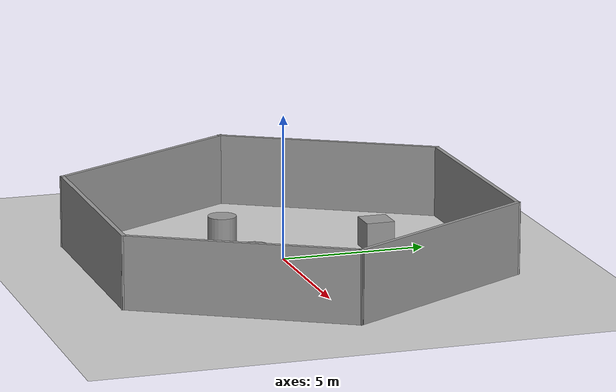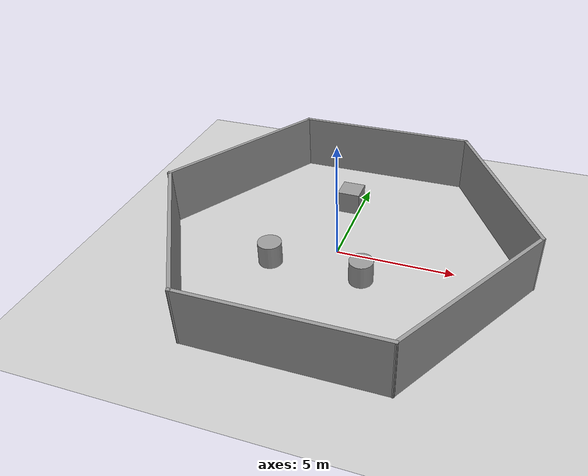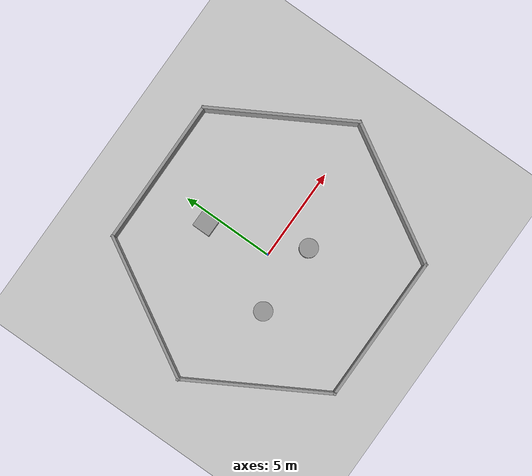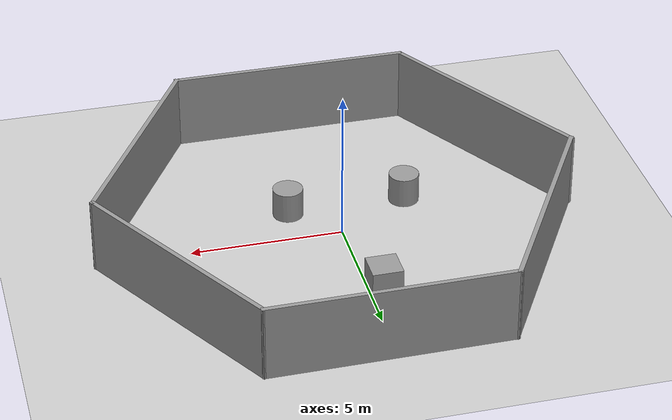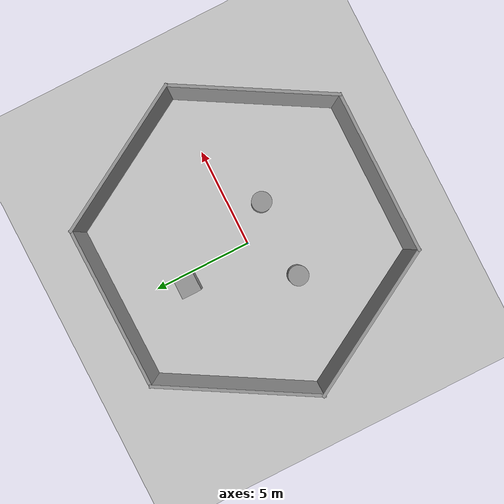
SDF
<sdf version="1.7">
 <world name="default">
  <light name="sun" type="directional">
   <pose>0 0 10 0 -0 0</pose>
   <diffuse>0.8 0.8 0.8 1</diffuse>
   <specular>0.2 0.2 0.2 1</specular>
   <attenuation>
    <range>1000</range>
    <constant>0.9</constant>
    <linear>0.01</linear>
    <quadratic>0.001</quadratic>
   </attenuation>
   <direction>-0.5 0.1 -0.9</direction>
   <spot><inner_angle>0</inner_angle><outer_angle>0</outer_angle><falloff>0</falloff></spot>
  </light>
  <model name="ground_plane">
   <static>1</static>
   <link name="link">
    <collision name="collision">
     <geometry><plane><normal>0 0 1</normal><size>100 100</size></plane></geometry>
     <surface><friction><ode><mu>100</mu><mu2>50</mu2></ode></friction></surface>
    </collision>
    <visual name="visual">
     <cast_shadows>0</cast_shadows>
     <geometry><plane><normal>0 0 1</normal><size>100 100</size></plane></geometry>
     <material>
      <script><uri>file://media/materials/scripts/gazebo.material</uri><name>Gazebo/Grey</name></script>
     </material>
    </visual>
   </link>
  </model>
  <gravity>0 0 -9.8</gravity>
  <magnetic_field>6e-06 2.3e-05 -4.2e-05</magnetic_field>
  <atmosphere type="adiabatic"/>
  <physics type="ode">
   <max_step_size>0.001</max_step_size>
   <real_time_factor>1</real_time_factor>
   <real_time_update_rate>1000</real_time_update_rate>
  </physics>
  <scene><ambient>0.4 0.4 0.4 1</ambient><background>0.7 0.7 0.7 1</background><shadows>1</shadows></scene>
  <audio><device>default</device></audio>
  <spherical_coordinates>
   <surface_model>EARTH_WGS84</surface_model>
   <latitude_deg>0</latitude_deg>
   <longitude_deg>0</longitude_deg>
   <elevation>0</elevation>
   <heading_deg>0</heading_deg>
  </spherical_coordinates>
  <model name="map">
   <pose>0.18838 0.0727 0 0 -0 0</pose>
   <link name="Wall_13">
    <collision name="Wall_13_Collision">
     <geometry><box><size>8 0.15 2.5</size></box></geometry>
     <pose>0 0 1.25 0 -0 0</pose>
    </collision>
    <visual name="Wall_13_Visual">
     <pose>0 0 1.25 0 -0 0</pose>
     <geometry><box><size>8 0.15 2.5</size></box></geometry>
     <material>
      <script><uri>file://media/materials/scripts/gazebo.material</uri><name>Gazebo/Grey</name></script>
      <ambient>1 1 1 1</ambient>
     </material>
     <meta><layer>0</layer></meta>
    </visual>
    <pose>5.8875 3.39915 0 0 -0 -1.0472</pose>
   </link>
   <link name="Wall_14">
    <collision name="Wall_14_Collision">
     <geometry><box><size>8 0.15 2.5</size></box></geometry>
     <pose>0 0 1.25 0 -0 0</pose>
    </collision>
    <visual name="Wall_14_Visual">
     <pose>0 0 1.25 0 -0 0</pose>
     <geometry><box><size>8 0.15 2.5</size></box></geometry>
     <material>
      <script><uri>file://media/materials/scripts/gazebo.material</uri><name>Gazebo/Grey</name></script>
      <ambient>1 1 1 1</ambient>
     </material>
     <meta><layer>0</layer></meta>
    </visual>
    <pose>5.8875 -3.39915 0 0 -0 -2.0944</pose>
   </link>
   <link name="Wall_15">
    <collision name="Wall_15_Collision">
     <geometry><box><size>8 0.15 2.5</size></box></geometry>
     <pose>0 0 1.25 0 -0 0</pose>
    </collision>
    <visual name="Wall_15_Visual">
     <pose>0 0 1.25 0 -0 0</pose>
     <geometry><box><size>8 0.15 2.5</size></box></geometry>
     <material>
      <script><uri>file://media/materials/scripts/gazebo.material</uri><name>Gazebo/Grey</name></script>
      <ambient>1 1 1 1</ambient>
     </material>
     <meta><layer>0</layer></meta>
    </visual>
    <pose>0 -6.7983 0 0 -0 3.14159</pose>
   </link>
   <link name="Wall_16">
    <collision name="Wall_16_Collision">
     <geometry><box><size>8 0.15 2.5</size></box></geometry>
     <pose>0 0 1.25 0 -0 0</pose>
    </collision>
    <visual name="Wall_16_Visual">
     <pose>0 0 1.25 0 -0 0</pose>
     <geometry><box><size>8 0.15 2.5</size></box></geometry>
     <material>
      <script><uri>file://media/materials/scripts/gazebo.material</uri><name>Gazebo/Grey</name></script>
      <ambient>1 1 1 1</ambient>
     </material>
     <meta><layer>0</layer></meta>
    </visual>
    <pose>-5.8875 -3.39915 0 0 -0 2.0944</pose>
   </link>
   <link name="Wall_6">
    <collision name="Wall_6_Collision">
     <geometry><box><size>8 0.15 2.5</size></box></geometry>
     <pose>0 0 1.25 0 -0 0</pose>
    </collision>
    <visual name="Wall_6_Visual">
     <pose>0 0 1.25 0 -0 0</pose>
     <geometry><box><size>8 0.15 2.5</size></box></geometry>
     <material>
      <script><uri>file://media/materials/scripts/gazebo.material</uri><name>Gazebo/Grey</name></script>
      <ambient>1 1 1 1</ambient>
     </material>
     <meta><layer>0</layer></meta>
    </visual>
    <pose>-5.8875 3.35289 0 0 -0 1.0472</pose>
   </link>
   <link name="Wall_7">
    <collision name="Wall_7_Collision">
     <geometry><box><size>8 0.15 2.5</size></box></geometry>
     <pose>0 0 1.25 0 -0 0</pose>
    </collision>
    <visual name="Wall_7_Visual">
     <pose>0 0 1.25 0 -0 0</pose>
     <geometry><box><size>8 0.15 2.5</size></box></geometry>
     <material>
      <script><uri>file://media/materials/scripts/gazebo.material</uri><name>Gazebo/Grey</name></script>
      <ambient>1 1 1 1</ambient>
     </material>
     <meta><layer>0</layer></meta>
    </visual>
    <pose>0 6.77517 0 0 -0 0.005893</pose>
   </link>
   <static>1</static>
  </model>
  <model name="unit_cylinder_1">
   <pose>-2.44908 -1.44588 0.499992 -3e-06 4e-06 0</pose>
   <link name="link">
    <inertial>
     <mass>1</mass>
     <inertia><ixx>0.145833</ixx><ixy>0</ixy><ixz>0</ixz><iyy>0.145833</iyy><iyz>0</iyz><izz>0.125</izz></inertia>
    </inertial>
    <collision name="collision">
     <geometry><cylinder><radius>0.5</radius><length>1</length></cylinder></geometry>
    </collision>
    <visual name="visual">
     <geometry><cylinder><radius>0.5</radius><length>1</length></cylinder></geometry>
     <material>
      <script><name>Gazebo/Grey</name><uri>file://media/materials/scripts/gazebo.material</uri></script>
     </material>
    </visual>
   </link>
  </model>
  <model name="unit_cylinder_2">
   <pose>1.47277 -1.47744 0.499998 3e-06 4e-06 -0</pose>
   <link name="link">
    <inertial>
     <mass>1</mass>
     <inertia><ixx>0.145833</ixx><ixy>0</ixy><ixz>0</ixz><iyy>0.145833</iyy><iyz>0</iyz><izz>0.125</izz></inertia>
    </inertial>
    <collision name="collision">
     <geometry><cylinder><radius>0.5</radius><length>1</length></cylinder></geometry>
    </collision>
    <visual name="visual">
     <geometry><cylinder><radius>0.5</radius><length>1</length></cylinder></geometry>
     <material>
      <script><name>Gazebo/Grey</name><uri>file://media/materials/scripts/gazebo.material</uri></script>
     </material>
    </visual>
   </link>
  </model>
  <model name="unit_box_0">
   <pose>-0.459134 3.47039 0.5 -0 -0 -0</pose>
   <link name="link">
    <inertial>
     <mass>1</mass>
     <inertia>
      <ixx>0.166667</ixx>
      <ixy>0</ixy>
      <ixz>0</ixz>
      <iyy>0.166667</iyy>
      <iyz>0</iyz>
      <izz>0.166667</izz>
     </inertia>
    </inertial>
    <collision name="collision"><geometry><box><size>1 1 1</size></box></geometry></collision>
    <visual name="visual">
     <geometry><box><size>1 1 1</size></box></geometry>
     <material>
      <script><name>Gazebo/Grey</name><uri>file://media/materials/scripts/gazebo.material</uri></script>
     </material>
    </visual>
   </link>
  </model>
 </world>
</sdf>
